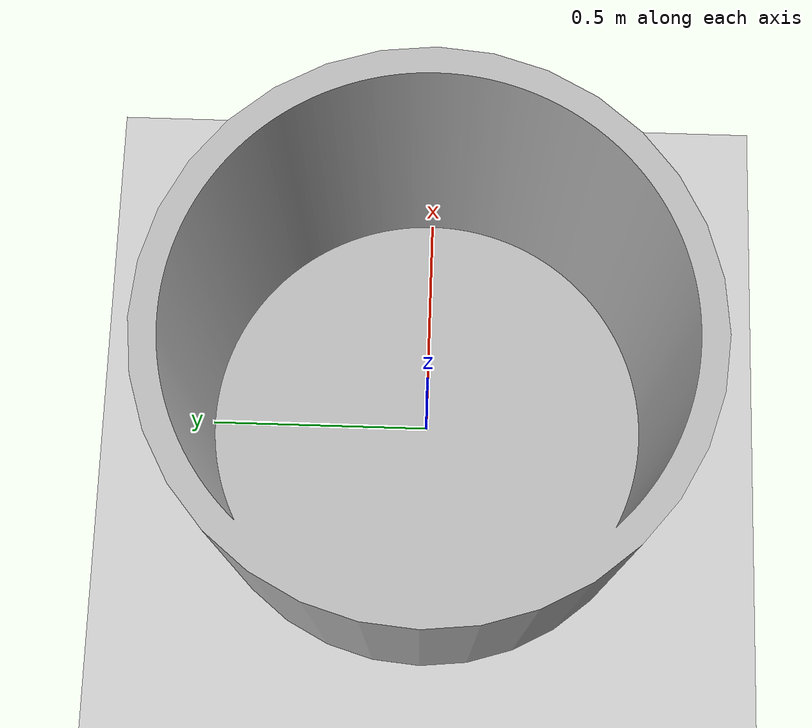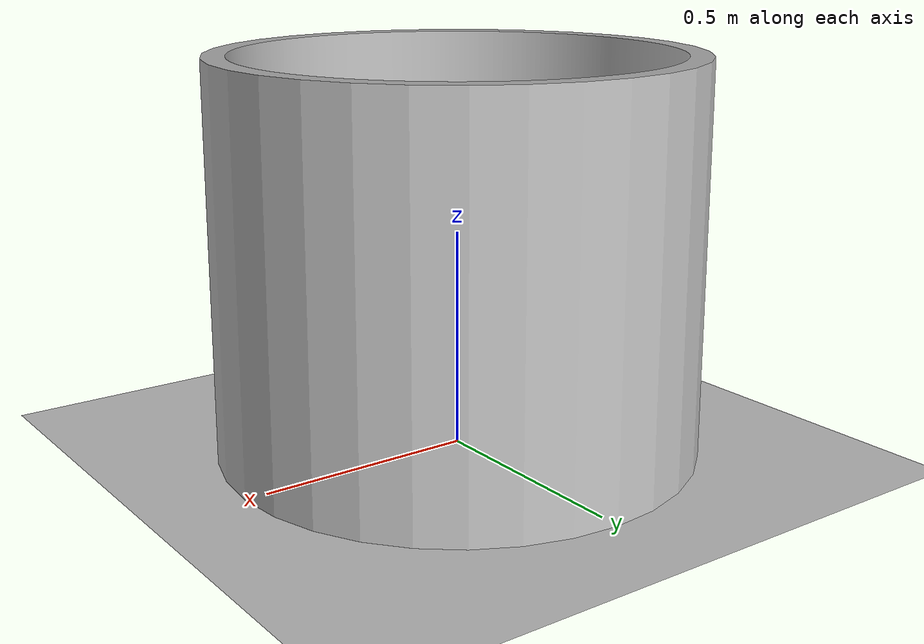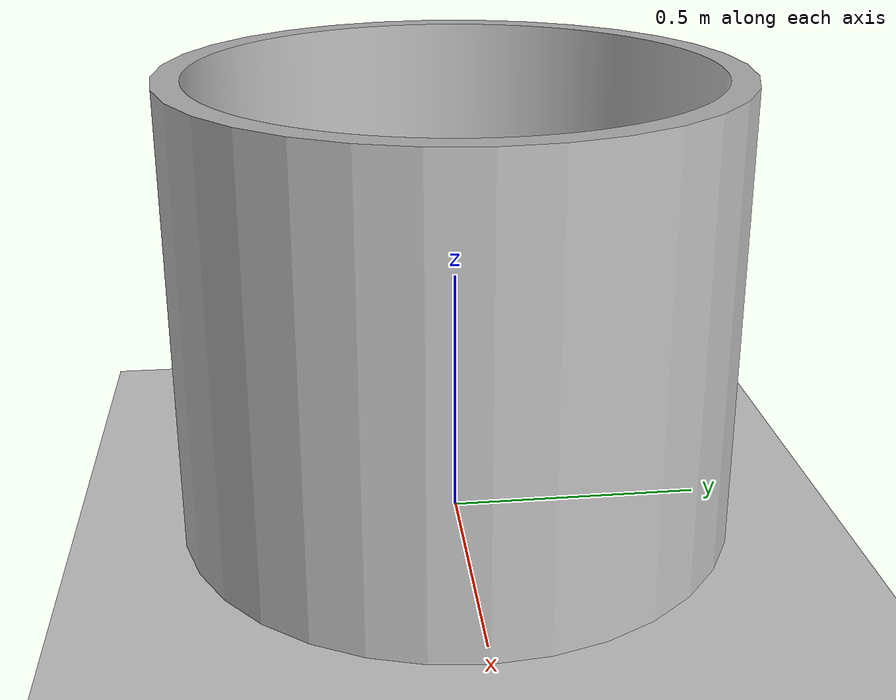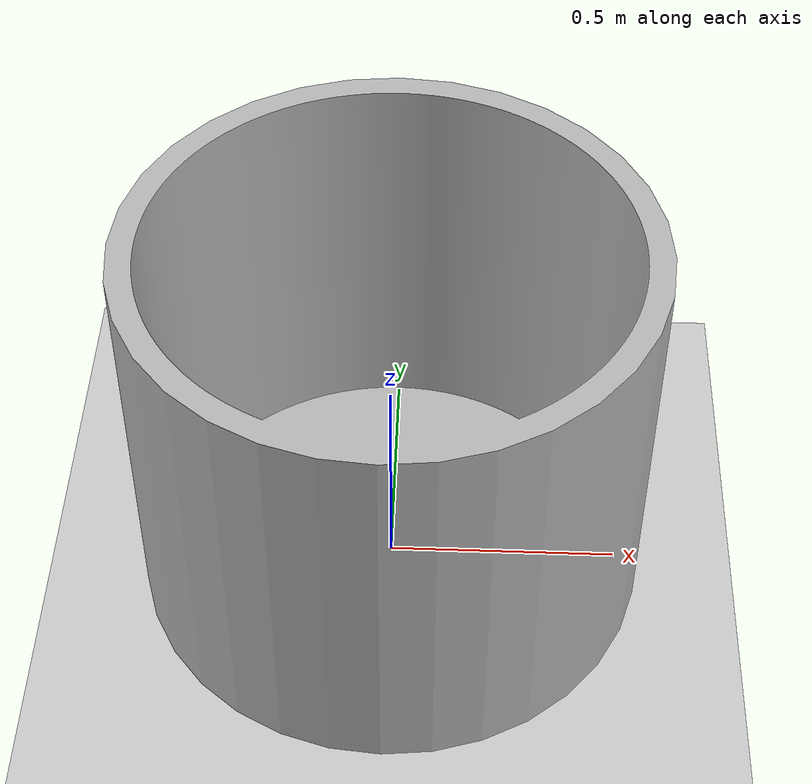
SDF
<?xml version="1.0"?>
<sdf version="1.4">
  <world name="default">
    <include>
      <uri>model://ground_plane</uri>
    </include>
    <include>
      <uri>model://sun</uri>
    </include>
    <model name="my_mesh">
      <pose>0 0 0.0  0 0 0</pose>
      <static>true</static>
      <link name="body">
        <visual name="visual">
          <geometry>
            <mesh><uri>pattern_test.dae</uri></mesh>
          </geometry>
        </visual>
        <collision name="collision">
          <geometry>
            <mesh><uri>pattern_test.dae</uri></mesh>
          </geometry>
        </collision>
      </link>
    </model>
  </world>
</sdf>
